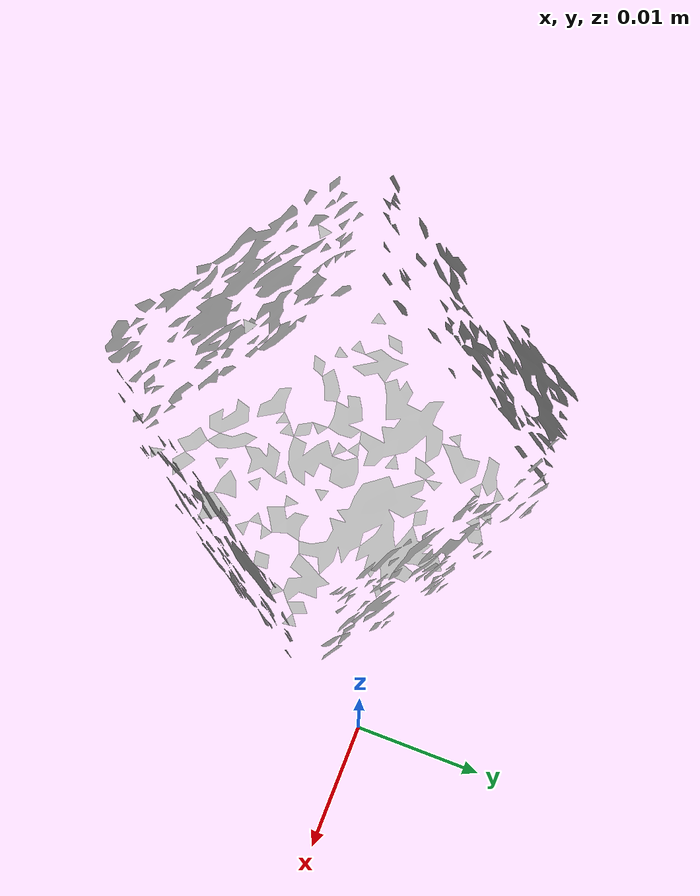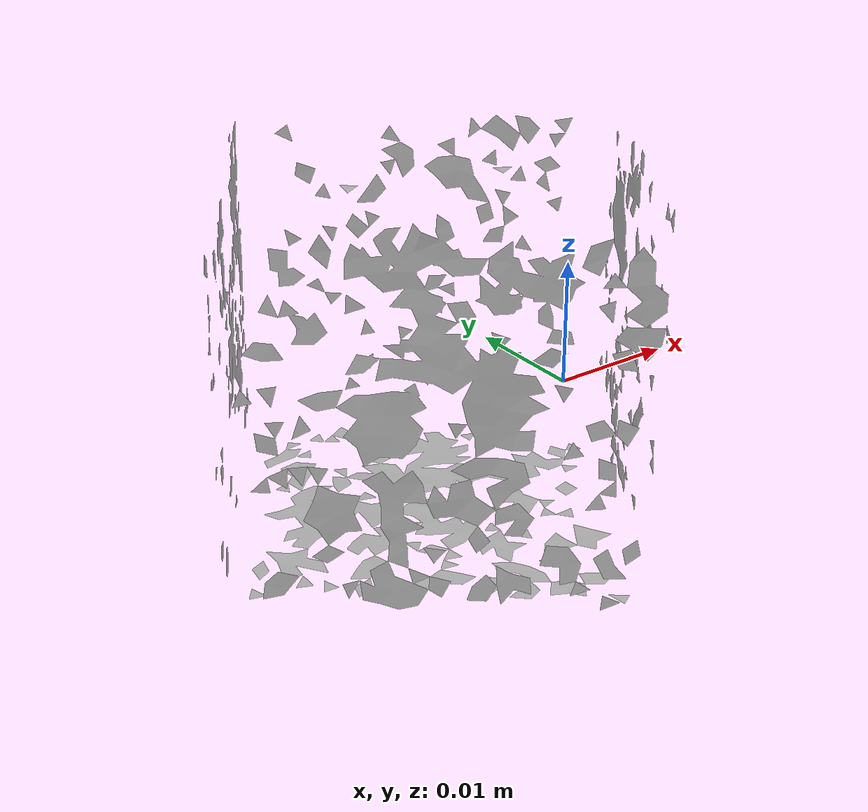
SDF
<?xml version="1.0" ?>
<sdf version="1.4">
  <model name='ycb_070-b_colored_wood_blocks'>
    <link name='body'>
      <inertial>
        <mass>0.0221511880653</mass>
        <pose>-0.0188212639886 -0.00881855990012 0.0126334338273 0 0 0</pose>
        <inertia>
          <ixx>2.38935857923e-06</ixx>
          <ixy>-1.67754129002e-09</ixy>
          <ixz>-1.01671180471e-08</ixz>
          <iyy>2.38095232944e-06</iyy>
          <iyz>9.03271363311e-09</iyz>
          <izz>2.37886887489e-06</izz>
        </inertia>
      </inertial>
      <visual name='ycb_070-b_colored_wood_blocks_visual'>
        <pose>0 0 0 0 0 0</pose>
        <geometry>
          <mesh>
            <uri>model://ycb_070-b_colored_wood_blocks/meshes/textured.dae</uri>
          </mesh>
        </geometry>
      </visual>
      <collision name='ycb_070-b_colored_wood_blocks_collision'>
        <pose>0 0 0 0 0 0</pose>
        <geometry>
          <mesh>
            <uri>model://ycb_070-b_colored_wood_blocks/meshes/nontextured.stl</uri>
          </mesh>
        </geometry>
        <max_contacts>10</max_contacts>
      </collision>
    </link>
  </model>
</sdf>
